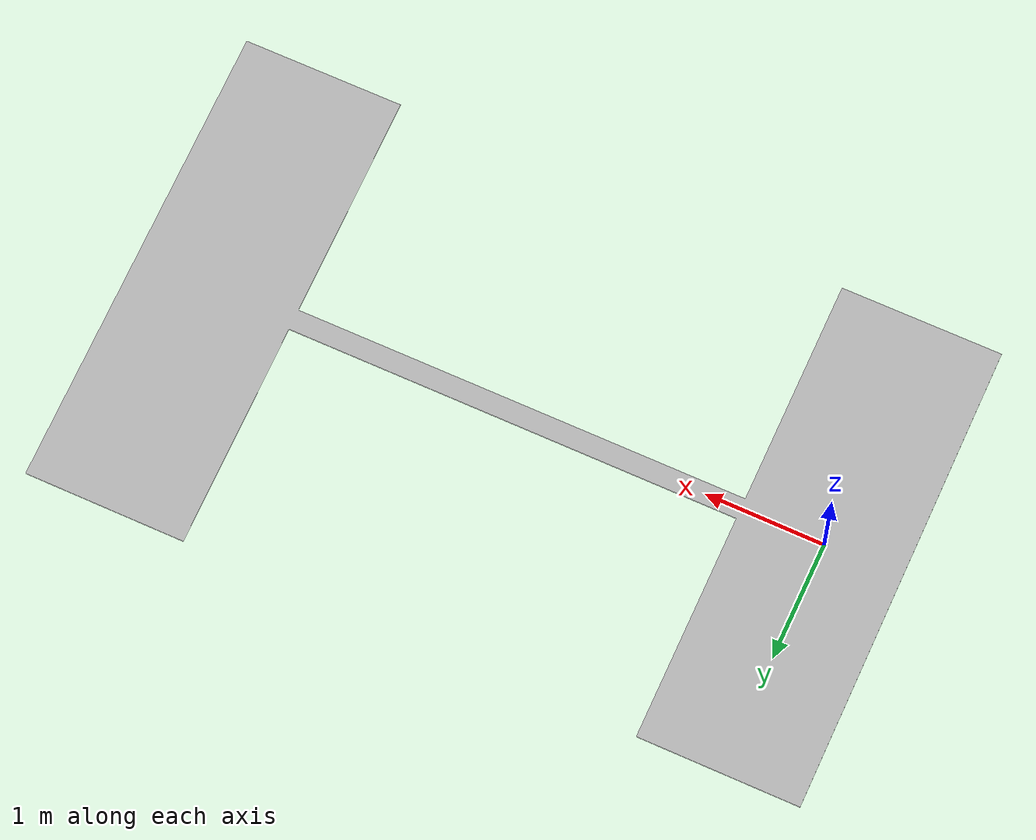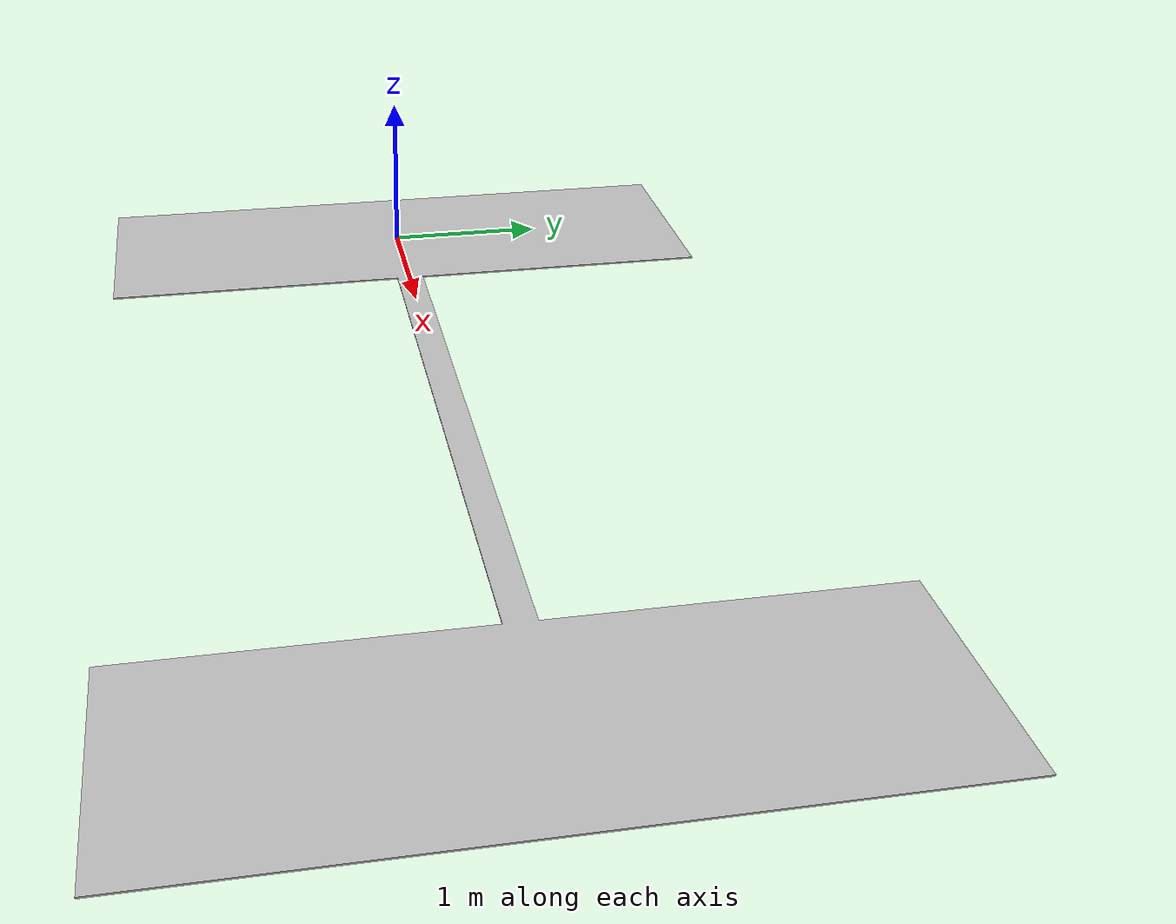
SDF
<?xml version="1.0"?>
<sdf version='1.6'>
  <world name='default'>
    <physics type="ode">
    <max_step_size>0.001</max_step_size>
    <real_time_factor>1</real_time_factor>
    <real_time_update_rate>1000</real_time_update_rate>
        <ode>
            <solver>
              <iters>300</iters>
            </solver>
        </ode>
    </physics>

    <scene>
      <shadows>false</shadows>
    </scene>

    <gravity>0 0 -9.81</gravity>

    <!-- Add system-level physics and sensor plugins to each world -->
    <plugin
      filename="libgz-sim8-physics-system"
      name="gz::sim::systems::Physics">
    </plugin>

    <plugin
      filename="libgz-sim8-scene-broadcaster-system"
      name="gz::sim::systems::SceneBroadcaster">
    </plugin>

    <plugin
      filename="libgz-sim8-sensors-system"
      name="gz::sim::systems::Sensors"/>

    <plugin
      filename="libgz-sim8-user-commands-system"
      name="gz::sim::systems::UserCommands"/>
    <plugin
      filename="libgz-sim8-contact-system.so"
      name="gz::sim::systems::Contact">
    </plugin>

    <plugin
      filename="libgz-sim8-imu-system.so"
      name="gz::sim::systems::Imu">
    </plugin>

    <plugin
      filename="libgz-sim8-forcetorque-system.so"
      name="gz::sim::systems::ForceTorque"/>

    <plugin
      filename="libgz-sim-apply-link-wrench-system.so"
      name="gz::sim::systems::ApplyLinkWrench"/>

    <light name="sun" type="directional">
      <cast_shadows>true</cast_shadows>
      <pose>0 0 10 0 0 0</pose>
      <diffuse>1 1 1 1</diffuse>
      <specular>0.1 0.1 0.1 1</specular>
      <direction>-1 0 -1</direction>
    </light>

    <include>
      <uri>model://thin_beam_uniform</uri>
      <pose>-0.65 -2 0.01  0 0 0</pose>
    </include>
  </world>
</sdf>

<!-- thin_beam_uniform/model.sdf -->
<sdf version="1.6">
    <model name="thin_beam_uniform">
      <static>true</static>
      <link name="body">
        <visual name="visual">
          <geometry>
            <mesh>
                <uri>meshes/thin_beam_uniform.stl</uri>
            </mesh>
          </geometry>
        </visual>
        <collision name="collision">
          <geometry>
            <mesh>
                <uri>meshes/thin_beam_uniform.stl</uri>
            </mesh>
          </geometry>
          <surface>
            <friction>
              <ode>
                <mu>100</mu>
                <mu2>100</mu2>
              </ode>
            </friction>
          </surface>
        </collision>
      </link>
    </model>
</sdf>
